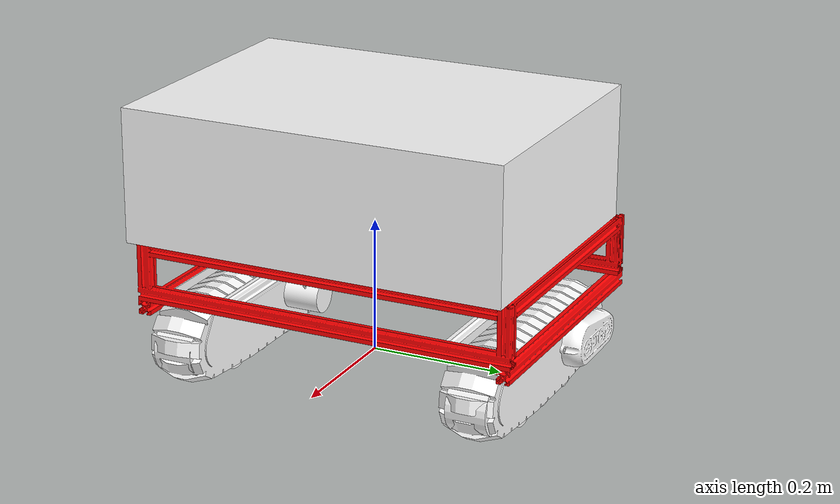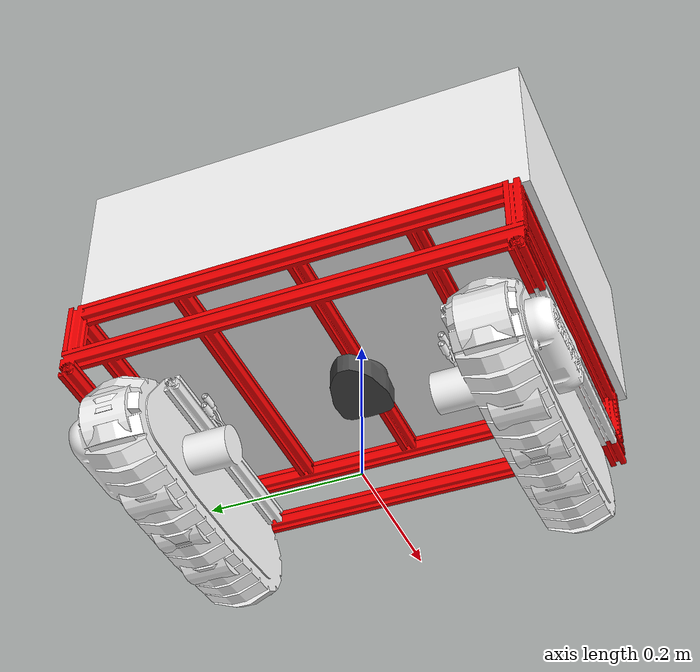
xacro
<?xml version="1.0"?>
<robot xmlns:xacro="http://ros.org/wiki/xacro" name="cugo_v3">

  <xacro:include filename="$(find cugo_ros2_control)/models/cugo/material_colors.xacro" />
  <xacro:include filename="$(find cugo_ros2_control)/models/cugo/gazebo_material_macro.xacro" />

  <xacro:property name="body_width" value="0.42" />
  <xacro:property name="body_depth" value="0.58" />
  <xacro:property name="body_height" value="0.26" />

  <xacro:property name="tbox_width" value="0.42" />
  <xacro:property name="tbox_depth" value="0.58" />
  <xacro:property name="tbox_height" value="0.20" />

  <xacro:property name="body_collision_width" value="0.42" />
  <xacro:property name="body_collision_depth" value="0.58" />
  <xacro:property name="body_collision_height" value="0.20" />

  <xacro:property name="wheel_length" value="0.06" />
  <xacro:property name="collision_wheel_length" value="0.145" />
  <!-- 当たり判定の径 -->
  <xacro:property name="wheel_radius" value="0.03858" />
  <!-- スプロケット径 -->
  <xacro:property name="mini_wheel_radius" value="0.03858" />

  <xacro:property name="wheel_diameter" value="0.07716" />

  <xacro:property name="max_wheel_acceleration" value="1.0" />
  <xacro:property name="max_wheel_torque" value="5.0" />

  <xacro:property name="big_wheel_front_x" value="0.172" />
  <xacro:property name="big_wheel_back_x" value="-0.172" />
  <xacro:property name="center_wheel_z" value="-0.105" />
  <xacro:property name="big_wheel_z" value="-0.08" />

  <xacro:property name="left_wheel_y" value="0.24" />
  <xacro:property name="right_wheel_y" value="-0.22" />

  <link name="base_footprint"/>

  <joint name="base_footprint_joint" type="fixed">
    <parent link="base_footprint"/>
    <child link="base_link"/>
    <origin xyz="0.0 0.0 0.1065" rpy="0 0 0"/>
  </joint>

  <link name="base_link"/>

  <joint name="body_joint" type="fixed">
    <parent link="base_link"/>
    <child  link="base_body"/>
    <origin xyz="0 0 0" rpy="0 0 0"/>
  </joint>

  <link name="base_body">
    <visual>
      <geometry>
        <mesh filename="file://$(find cugo_ros2_control)/models/cugo/meshes/roskit-Compound.dae" scale="1 1 1"/>
      </geometry>
      <origin xyz="0 0 0" rpy="0 0 -1.57"/>
      <material name="red"/>
    </visual>
    <inertial>
      <mass value="0.1"/>
      <inertia ixx="0.13542" iyy="0.10833" izz="0.17708" ixy="0.0" ixz="0.0" iyz="0.0"/>
    </inertial>
  </link>

  <joint name="body_collision_joint" type="fixed">
    <parent link="base_body"/>
    <child link="body_collision"/>
    <origin xyz="0 0 ${body_collision_height/2+body_height/2-0.05}" rpy="0 0 0"/>
  </joint>

  <link name="body_collision">
    <visual>
      <geometry>
        <box size="${body_collision_width} ${body_collision_depth} ${body_collision_height}"/>
      </geometry>
      <origin xyz="0 0 0" rpy="0 0 0"/>
      <material name="dummy_white"/>
    </visual>
    <collision>
      <geometry>
        <box size="${body_collision_width} ${body_collision_depth} ${body_collision_height}"/>
      </geometry>
    </collision>
    <inertial>
      <mass value="0.1"/>
      <inertia ixx="0.13542" iyy="0.10833" izz="0.17708" ixy="0.0" ixz="0.0" iyz="0.0"/>
    </inertial>
  </link>

  <joint name="left_wheel_joint" type="continuous">
    <axis xyz="0 0 -1" rpy="0 0 0"/>
    <limit lower="-1.57" upper="1.57" effort="0.5" velocity="2.0"/>
    <parent link="base_body"/>
    <child link="left_wheel"/>
    <origin xyz="0 ${left_wheel_y} ${center_wheel_z}" rpy="0 1.57075 -1.57"/>
  </joint>

  <link name="left_wheel">
    <visual>
      <origin xyz="0 0 0" rpy="0 0 0"/>
      <geometry>
        <cylinder length="${wheel_length}" radius="${mini_wheel_radius}"/>
      </geometry>
      <material name="dummy_white"/>
    </visual>
    <collision>
      <geometry>
        <cylinder length="${collision_wheel_length}" radius="${mini_wheel_radius}"/>
      </geometry>
    </collision>
    <inertial>
      <mass value="0.1"/>
      <inertia ixx="0.00024" iyy="0.00024" izz="0.00015" ixy="0.0" ixz="0.0" iyz="0.0"/>
    </inertial>
  </link>

  <joint name="left_wheel_joint_center_mini_front" type="continuous">
    <axis xyz="0 0 -1" rpy="0 0 0"/>
    <limit lower="-1.57" upper="1.57" effort="1.0" velocity="2.0"/>
    <parent link="base_body"/>
    <child link="left_wheel_center_mini_front"/>
    <origin xyz="${mini_wheel_radius*2} ${left_wheel_y} ${center_wheel_z}" rpy="0 1.57075 -1.57"/>
  </joint>

  <link name="left_wheel_center_mini_front">
    <visual>
      <origin xyz="0 0 0" rpy="0 0 0"/>
      <geometry>
        <cylinder length="${wheel_length}" radius="${mini_wheel_radius}"/>
      </geometry>
      <material name="dummy_white"/>
    </visual>
    <collision>
      <geometry>
        <cylinder length="${collision_wheel_length}" radius="${mini_wheel_radius}"/>
      </geometry>
    </collision>
    <inertial>
      <mass value="0.1"/>
      <inertia ixx="0.00024" iyy="0.00024" izz="0.00015" ixy="0.0" ixz="0.0" iyz="0.0"/>
    </inertial>
  </link>

  <joint name="left_wheel_joint_center_mini_back" type="continuous">
    <axis xyz="0 0 -1" rpy="0 0 0"/>
    <limit lower="-1.57" upper="1.57" effort="1.0" velocity="2.0"/>
    <parent link="base_body"/>
    <child link="left_wheel_center_mini_back"/>
    <origin xyz="-${mini_wheel_radius*2} ${left_wheel_y} ${center_wheel_z}" rpy="0 1.57075 -1.57"/>
  </joint>

  <link name="left_wheel_center_mini_back">
    <visual>
      <origin xyz="0 0 0" rpy="0 0 0"/>
      <geometry>
        <cylinder length="${wheel_length}" radius="${mini_wheel_radius}"/>
      </geometry>
      <material name="dummy_white"/>
    </visual>
    <collision>
      <geometry>
        <cylinder length="${collision_wheel_length}" radius="${mini_wheel_radius}"/>
      </geometry>
    </collision>
    <inertial>
      <mass value="0.1"/>
      <inertia ixx="0.00024" iyy="0.00024" izz="0.00015" ixy="0.0" ixz="0.0" iyz="0.0"/>
    </inertial>
  </link>

  <joint name="left_wheel_joint_big_front" type="continuous">
    <axis xyz="0 0 -1" rpy="0 0 0"/>
    <limit lower="-1.57" upper="1.57" effort="1.0" velocity="2.0"/>
    <parent link="base_body"/>
    <child link="left_wheel_big_front"/>
    <origin xyz="${big_wheel_front_x} ${left_wheel_y} ${big_wheel_z}" rpy="0 1.57075 -1.57"/>
  </joint>

  <link name="left_wheel_big_front">
    <visual>
      <origin xyz="0 0 0" rpy="0 0 0"/>
      <geometry>
        <cylinder length="${wheel_length}" radius="${wheel_radius}"/>
      </geometry>
      <material name="dummy_white"/>
    </visual>
    <collision>
      <geometry>
        <cylinder length="${collision_wheel_length}" radius="${wheel_radius}"/>
      </geometry>
    </collision>
    <inertial>
      <mass value="0.1"/>
      <inertia ixx="0.00024" iyy="0.00024" izz="0.00015" ixy="0.0" ixz="0.0" iyz="0.0"/>
    </inertial>
  </link>

  <joint name="left_wheel_joint_big_back" type="continuous">
    <axis xyz="0 0 -1" rpy="0 0 0"/>
    <limit lower="-1.57" upper="1.57" effort="1.0" velocity="2.0"/>
    <parent link="base_body"/>
    <child link="left_wheel_big_back"/>
    <origin xyz="${big_wheel_back_x} ${left_wheel_y} ${big_wheel_z}" rpy="0 1.57075 -1.57"/>
  </joint>

  <link name="left_wheel_big_back">
    <visual>
      <origin xyz="0 0 0" rpy="0 0 0"/>
      <geometry>
        <cylinder length="${wheel_length}" radius="${wheel_radius}"/>
      </geometry>
      <material name="dummy_white"/>
    </visual>
    <collision>
      <geometry>
        <cylinder length="${collision_wheel_length}" radius="${wheel_radius}"/>
      </geometry>
    </collision>
    <inertial>
      <mass value="0.1"/>
      <inertia ixx="0.00024" iyy="0.00024" izz="0.00015" ixy="0.0" ixz="0.0" iyz="0.0"/>
    </inertial>
  </link>

  <joint name="right_wheel_joint" type="continuous">
    <axis xyz="0 0 -1" rpy="0 0 0"/>
    <limit lower="-1.57" upper="1.57" effort="1.0" velocity="2.0"/>
    <parent link="base_body"/>
    <child link="right_wheel"/>
    <origin xyz="0 ${right_wheel_y} ${center_wheel_z}" rpy="0 1.57075 -1.57"/>
  </joint>

  <link name="right_wheel">
    <visual>
      <origin xyz="0 0 0" rpy="0 0 0"/>
      <geometry>
        <cylinder length="${wheel_length}" radius="${mini_wheel_radius}"/>
      </geometry>
      <material name="dummy_white"/>
    </visual>
    <collision>
      <geometry>
        <cylinder length="${collision_wheel_length}" radius="${mini_wheel_radius}"/>
      </geometry>
    </collision>
    <inertial>
      <mass value="0.1"/>
      <inertia ixx="0.00024" iyy="0.00024" izz="0.00015" ixy="0.0" ixz="0.0" iyz="0.0"/>
    </inertial>
  </link>

  <joint name="right_wheel_joint_center_mini_front" type="continuous">
    <axis xyz="0 0 -1" rpy="0 0 0"/>
    <limit lower="-1.57" upper="1.57" effort="1.0" velocity="2.0"/>
    <parent link="base_body"/>
    <child link="right_wheel_center_mini_front"/>
    <origin xyz="${mini_wheel_radius*2} ${right_wheel_y} ${center_wheel_z}" rpy="0 1.57075 -1.57"/>
  </joint>

  <link name="right_wheel_center_mini_front">
    <visual>
      <origin xyz="0 0 0" rpy="0 0 0"/>
      <geometry>
        <cylinder length="${wheel_length}" radius="${mini_wheel_radius}"/>
      </geometry>
      <material name="dummy_white"/>
    </visual>
    <collision>
      <geometry>
        <cylinder length="${collision_wheel_length}" radius="${mini_wheel_radius}"/>
      </geometry>
    </collision>
    <inertial>
      <mass value="0.1"/>
      <inertia ixx="0.00024" iyy="0.00024" izz="0.00015" ixy="0.0" ixz="0.0" iyz="0.0"/>
    </inertial>
  </link>

  <joint name="right_wheel_joint_center_mini_back" type="continuous">
    <axis xyz="0 0 -1" rpy="0 0 0"/>
    <limit lower="-1.57" upper="1.57" effort="1.0" velocity="2.0"/>
    <parent link="base_body"/>
    <child link="right_wheel_center_mini_back"/>
    <origin xyz="-${mini_wheel_radius*2} ${right_wheel_y} ${center_wheel_z}" rpy="0 1.57075 -1.57"/>
  </joint>

  <link name="right_wheel_center_mini_back">
    <visual>
      <origin xyz="0 0 0" rpy="0 0 0"/>
      <geometry>
        <cylinder length="${wheel_length}" radius="${mini_wheel_radius}"/>
      </geometry>
      <material name="dummy_white"/>
    </visual>
    <collision>
      <geometry>
        <cylinder length="${collision_wheel_length}" radius="${mini_wheel_radius}"/>
      </geometry>
    </collision>
    <inertial>
      <mass value="0.1"/>
      <inertia ixx="0.00024" iyy="0.00024" izz="0.00015" ixy="0.0" ixz="0.0" iyz="0.0"/>
    </inertial>
  </link>

  <joint name="right_wheel_joint_big_front" type="continuous">
    <axis xyz="0 0 -1" rpy="0 0 0"/>
    <limit lower="-1.57" upper="1.57" effort="1.0" velocity="2.0"/>
    <parent link="base_body"/>
    <child link="right_wheel_big_front"/>
    <origin xyz="${big_wheel_front_x} ${right_wheel_y} ${big_wheel_z}" rpy="0 1.57075 -1.57"/>
  </joint>

  <link name="right_wheel_big_front">
    <visual>
      <origin xyz="0 0 0" rpy="0 0 0"/>
      <geometry>
        <cylinder length="${wheel_length}" radius="${wheel_radius}"/>
      </geometry>
      <material name="dummy_white"/>
    </visual>
    <collision>
      <geometry>
        <cylinder length="${collision_wheel_length}" radius="${wheel_radius}"/>
      </geometry>
    </collision>
    <inertial>
      <mass value="0.1"/>
      <inertia ixx="0.00024" iyy="0.00024" izz="0.00015" ixy="0.0" ixz="0.0" iyz="0.0"/>
    </inertial>
  </link>

  <joint name="right_wheel_joint_big_back" type="continuous">
    <axis xyz="0 0 -1" rpy="0 0 0"/>
    <limit lower="-1.57" upper="1.57" effort="1.0" velocity="2.0"/>
    <parent link="base_body"/>
    <child link="right_wheel_big_back"/>
    <origin xyz="${big_wheel_back_x} ${right_wheel_y} ${big_wheel_z}" rpy="0 1.57075 -1.57"/>
  </joint>

  <link name="right_wheel_big_back">
    <visual>
      <origin xyz="0 0 0" rpy="0 0 0"/>
      <geometry>
        <cylinder length="${wheel_length}" radius="${wheel_radius}"/>
      </geometry>
      <material name="dummy_white"/>
    </visual>
    <collision>
      <geometry>
        <cylinder length="${collision_wheel_length}" radius="${wheel_radius}"/>
      </geometry>
    </collision>
    <inertial>
      <mass value="0.1"/>
      <inertia ixx="0.00024" iyy="0.00024" izz="0.00015" ixy="0.0" ixz="0.0" iyz="0.0"/>
    </inertial>
  </link>

  <joint name="left_crawler_joint" type="fixed">
    <axis xyz="0 0 -1" rpy="0 0 0"/>
    <parent link="base_body"/>
    <child link="left_crawler"/>
    <origin xyz="-0.01 0.22 -0.043" rpy="0 1.57075 -1.57"/>
  </joint>

  <link name="left_crawler">
    <visual>
      <origin xyz="0 0 0" rpy="0 0 0"/>
      <geometry>
        <mesh filename="file://$(find cugo_ros2_control)/models/cugo/meshes/cugo_v3_l-CuGoV3_L001.stl" scale="0.001 0.001 0.001"/>
      </geometry>
      <material name="white"/>
    </visual>
    <inertial>
      <mass value="0.1"/>
      <inertia ixx="0.00024" iyy="0.00024" izz="0.00015" ixy="0.0" ixz="0.0" iyz="0.0"/>
    </inertial>
  </link>

  <joint name="right_crawler_joint" type="fixed">
    <axis xyz="0 0 -1" rpy="0 0 0"/>
    <parent link="base_body"/>
    <child link="right_crawler"/>
    <origin xyz="-0.10 -0.2065 -0.055" rpy="0 1.57075 -1.57"/>
  </joint>

  <link name="right_crawler">
    <visual>
      <origin xyz="0 0 0" rpy="0 0 0"/>
      <geometry>
        <mesh filename="file://$(find cugo_ros2_control)/models/cugo/meshes/cugo_v3_r-CuGoV3_R001.stl" scale="0.001 0.001 0.001"/>
      </geometry>
      <material name="white"/>
    </visual>
    <inertial>
      <mass value="0.1"/>
      <inertia ixx="0.00024" iyy="0.00024" izz="0.00015" ixy="0.0" ixz="0.0" iyz="0.0"/>
    </inertial>
  </link>

  <!--diff_drive_controller plugin-->
  <gazebo>
    <plugin name="cugo_diff_drive" filename="libgazebo_ros_diff_drive.so">
      <update_rate>10</update_rate>
      <!-- wheels -->
      <left_joint>left_wheel_joint</left_joint>
      <right_joint>right_wheel_joint</right_joint>
      <!-- kinematics -->
      <wheel_separation>0.460</wheel_separation>
      <wheel_diameter>${wheel_diameter}</wheel_diameter>
      <!-- limits -->
      <max_wheel_acceleration>${max_wheel_acceleration}</max_wheel_acceleration>
      <max_wheel_torque>${max_wheel_torque}</max_wheel_torque>
      <command_topic>cmd_vel</command_topic>
      <!-- output -->
      <publish_odom>true</publish_odom>
      <publish_odom_tf>true</publish_odom_tf>
      <publish_wheel_tf>true</publish_wheel_tf>
      <odometry_topic>odom</odometry_topic>
      <odometry_frame>odom</odometry_frame>
      <robot_base_frame>base_footprint</robot_base_frame>
      <odometry_source>1</odometry_source>
    </plugin>
  </gazebo>

  <gazebo>
    <plugin name="cugo_diff_drive_mini_front" filename="libgazebo_ros_diff_drive.so">
      <update_rate>10</update_rate>
      <!-- wheels -->
      <left_joint>left_wheel_joint_center_mini_front</left_joint>
      <right_joint>right_wheel_joint_center_mini_front</right_joint>
      <!-- kinematics -->
      <wheel_separation>0.460</wheel_separation>
      <wheel_diameter>${wheel_diameter}</wheel_diameter>
      <!-- limits -->
      <max_wheel_acceleration>${max_wheel_acceleration}</max_wheel_acceleration>
      <max_wheel_torque>${max_wheel_torque}</max_wheel_torque>
      <command_topic>cmd_vel</command_topic>
      <legacyMode>false</legacyMode>
    </plugin>
  </gazebo>

  <gazebo>
    <plugin name="cugo_diff_drive_mini_back" filename="libgazebo_ros_diff_drive.so">
      <update_rate>10</update_rate>
      <!-- wheels -->
      <left_joint>left_wheel_joint_center_mini_back</left_joint>
      <right_joint>right_wheel_joint_center_mini_back</right_joint>
      <!-- kinematics -->
      <wheel_separation>0.460</wheel_separation>
      <wheel_diameter>${wheel_diameter}</wheel_diameter>
      <!-- limits -->
      <max_wheel_acceleration>${max_wheel_acceleration}</max_wheel_acceleration>
      <max_wheel_torque>${max_wheel_torque}</max_wheel_torque>
      <command_topic>cmd_vel</command_topic>
      <legacyMode>false</legacyMode>
    </plugin>
  </gazebo>

  <gazebo>
    <plugin name="cugo_diff_drive_big_front" filename="libgazebo_ros_diff_drive.so">
      <update_rate>10</update_rate>
      <!-- wheels -->
      <left_joint>left_wheel_joint_big_front</left_joint>
      <right_joint>right_wheel_joint_big_front</right_joint>
      <!-- kinematics -->
      <wheel_separation>0.460</wheel_separation>
      <wheel_diameter>${wheel_diameter}</wheel_diameter>
      <!-- limits -->
      <max_wheel_acceleration>${max_wheel_acceleration}</max_wheel_acceleration>
      <max_wheel_torque>${max_wheel_torque}</max_wheel_torque>
      <command_topic>cmd_vel</command_topic>
      <legacyMode>false</legacyMode>
    </plugin>
  </gazebo>

  <gazebo>
    <plugin name="cugo_diff_drive_big_back" filename="libgazebo_ros_diff_drive.so">
      <update_rate>10</update_rate>
      <!-- wheels -->
      <left_joint>left_wheel_joint_big_back</left_joint>
      <right_joint>right_wheel_joint_big_back</right_joint>
      <!-- kinematics -->
      <wheel_separation>0.460</wheel_separation>
      <wheel_diameter>${wheel_diameter}</wheel_diameter>
      <!-- limits -->
      <max_wheel_acceleration>${max_wheel_acceleration}</max_wheel_acceleration>
      <max_wheel_torque>${max_wheel_torque}</max_wheel_torque>
      <command_topic>cmd_vel</command_topic>
      <legacyMode>false</legacyMode>
    </plugin>
  </gazebo>

  <!-- gazebo上のパーツ設定 -->
  <xacro:gazebo_material ref="right_wheel" mu="2.0">
    <material>Gazebo/GreyTransparent</material>
  </xacro:gazebo_material>
  <xacro:gazebo_material ref="right_wheel_center_mini_front" mu="2.0">
    <material>Gazebo/GreyTransparent</material>
  </xacro:gazebo_material>
  <xacro:gazebo_material ref="right_wheel_center_mini_back" mu="2.0">
    <material>Gazebo/GreyTransparent</material>
  </xacro:gazebo_material>
  <xacro:gazebo_material ref="right_wheel_mini_front" mu="2.0">
    <material>Gazebo/GreyTransparent</material>
  </xacro:gazebo_material>
  <xacro:gazebo_material ref="right_wheel_mini_back" mu="2.0">
    <material>Gazebo/GreyTransparent</material>
  </xacro:gazebo_material>
  <xacro:gazebo_material ref="right_wheel_big_front" mu="2.0">
    <material>Gazebo/GreyTransparent</material>
  </xacro:gazebo_material>
  <xacro:gazebo_material ref="right_wheel_big_back" mu="2.0">
    <material>Gazebo/GreyTransparent</material>
  </xacro:gazebo_material>

  <xacro:gazebo_material ref="left_wheel" mu="2.0">
    <material>Gazebo/GreyTransparent</material>
  </xacro:gazebo_material>
  <xacro:gazebo_material ref="left_wheel_center_mini_front" mu="2.0">
    <material>Gazebo/GreyTransparent</material>
  </xacro:gazebo_material>
  <xacro:gazebo_material ref="left_wheel_center_mini_back" mu="2.0">
    <material>Gazebo/GreyTransparent</material>
  </xacro:gazebo_material>
  <xacro:gazebo_material ref="left_wheel_mini_front" mu="2.0">
    <material>Gazebo/GreyTransparent</material>
  </xacro:gazebo_material>
  <xacro:gazebo_material ref="left_wheel_mini_back" mu="2.0">
    <material>Gazebo/GreyTransparent</material>
  </xacro:gazebo_material>
  <xacro:gazebo_material ref="left_wheel_big_front" mu="2.0">
    <material>Gazebo/GreyTransparent</material>
  </xacro:gazebo_material>
  <xacro:gazebo_material ref="left_wheel_big_back" mu="2.0">
    <material>Gazebo/GreyTransparent</material>
  </xacro:gazebo_material>

  <xacro:gazebo_material ref="body_collision" mu="2.0">
    <material>Gazebo/GreyTransparent</material>
  </xacro:gazebo_material>

  <!-- 2D LiDAR -->
  <joint name="scan_joint" type="fixed">
    <parent link="base_link"/>
    <child link="base_scan"/>
    <origin xyz="-0.0 0.0 0.04" rpy="0 0 0"/>
  </joint>

  <link name="base_scan">
    <visual>
      <origin xyz="0 0 0.0" rpy="0 0 -1.57"/>
      <geometry>
        <mesh filename="file://$(find cugo_ros2_control)/models/cugo/meshes/lds.dae" scale="0.001 0.001 0.001"/>
      </geometry>
      <material name="dark"/>
    </visual>
    <inertial>
      <mass value="0.114" />
      <origin xyz="0 0 0" />
      <inertia ixx="0.001" ixy="0.0" ixz="0.0" iyy="0.001" iyz="0.0" izz="0.001" />
    </inertial>
  </link>

  <gazebo reference="base_scan">
    <material>Gazebo/Grey</material>
    <sensor type="ray" name="scan">
      <pose>0 0 0 0 0 0</pose>
      <visualize>true</visualize>
      <update_rate>30</update_rate>
      <always_on>true</always_on>
      <ray>
        <scan>
          <horizontal>
            <samples>400</samples>
            <resolution>1</resolution>
            <min_angle>${radians(-180)}</min_angle>
            <max_angle>${radians( 180)}</max_angle>
          </horizontal>
        </scan>
        <range>
          <min>0.10</min>
          <max>20.0</max>
          <resolution>0.01</resolution>
        </range>
        <noise>
          <type>gaussian</type>
          <mean>0.0</mean>
          <stddev>0.01</stddev>
        </noise>
      </ray>
      <plugin name="gazebo_ros_lidar_controller" filename="libgazebo_ros_ray_sensor.so">
        <ros>
          <remapping>~/out:=scan</remapping>
        </ros>
        <output_type>sensor_msgs/LaserScan</output_type>
        <topicName>/base_scan/scan</topicName>
        <frameName>base_scan</frameName>
      </plugin>
    </sensor>
  </gazebo>

</robot>

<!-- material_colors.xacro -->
<robot xmlns:xacro="http://ros.org/wiki/xacro">

<material name="white">
  <color rgba="1.0 1.0 1.0 1.0"/>
</material>

<material name="red">
  <color rgba="1.0 0.0 0.0 1.0"/>
</material>

<material name="green">
  <color rgba="0.0 1.0 0.0 1.0"/>
</material>

<material name="blue">
  <color rgba="0.0 0.0 1.0 1.0"/>
</material>

<material name="yellow">
  <color rgba="1.0 1.0 0.0 1.0"/>
</material>

<material name="cyan">
  <color rgba="0.0 1.0 1.0 1.0"/>
</material>

<material name="purple">
  <color rgba="1.0 0.0 1.0 1.0"/>
</material>

<material name="black">
  <color rgba="0.0 0.0 0.0 1.0"/>
</material>

<material name="dark">
  <color rgba="0.3 0.3 0.3 1.0"/>
</material>

<material name="dummy_white">
  <color rgba="1.0 1.0 1.0 0.0"/>
</material>

</robot>
